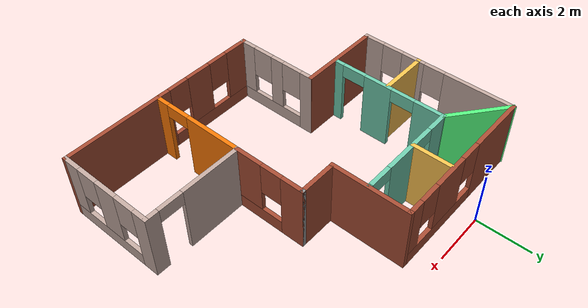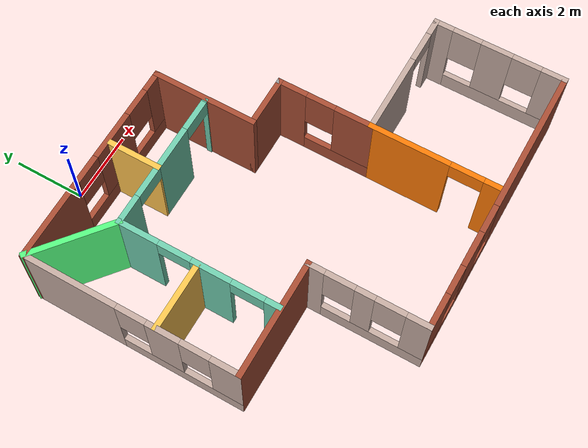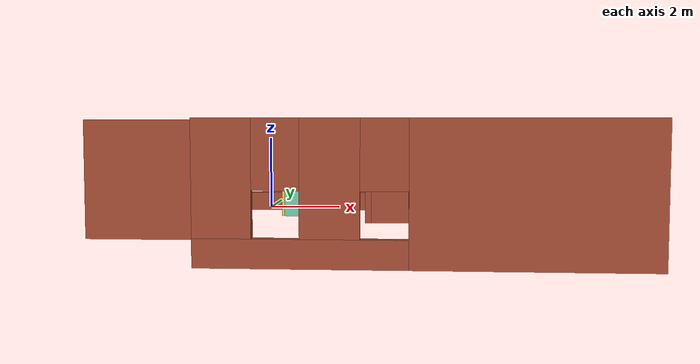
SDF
<?xml version='1.0'?>
<sdf version='1.6'>
  <model name='model'>
    <pose frame=''>2.54479 -5.24479 0 0 -0 0</pose>
    <link name='Wall_0'>
      <pose frame=''>-2.45979 4.48478 0 0 -0 0</pose>
      <visual name='Wall_0_Visual_0'>
        <pose frame=''>-1.81097 0 1.25 0 -0 0</pose>
        <geometry>
          <box>
            <size>2.27807 0.15 2.5</size>
          </box>
        </geometry>
        <material>
          <script>
            <uri>file://media/materials/scripts/gazebo.material</uri>
            <name>Gazebo/Bricks</name>
          </script>
          <ambient>1 1 1 1</ambient>
        </material>
        <meta>
          <layer>0</layer>
        </meta>
      </visual>
      <collision name='Wall_0_Collision_0'>
        <geometry>
          <box>
            <size>2.27807 0.15 2.5</size>
          </box>
        </geometry>
        <pose frame=''>-1.81097 0 1.25 0 -0 0</pose>
      </collision>
      <visual name='Wall_0_Visual_1'>
        <pose frame=''>1.13903 0 0.25 0 -0 0</pose>
        <geometry>
          <box>
            <size>3.62193 0.15 0.5</size>
          </box>
        </geometry>
        <material>
          <script>
            <uri>file://media/materials/scripts/gazebo.material</uri>
            <name>Gazebo/Bricks</name>
          </script>
          <ambient>1 1 1 1</ambient>
        </material>
        <meta>
          <layer>0</layer>
        </meta>
      </visual>
      <collision name='Wall_0_Collision_1'>
        <geometry>
          <box>
            <size>3.62193 0.15 0.5</size>
          </box>
        </geometry>
        <pose frame=''>1.13903 0 0.25 0 -0 0</pose>
      </collision>
      <visual name='Wall_0_Visual_2'>
        <pose frame=''>0.823098 0 1.5 0 -0 0</pose>
        <geometry>
          <box>
            <size>1.39006 0.15 2</size>
          </box>
        </geometry>
        <material>
          <script>
            <uri>file://media/materials/scripts/gazebo.material</uri>
            <name>Gazebo/Bricks</name>
          </script>
          <ambient>1 1 1 1</ambient>
        </material>
        <meta>
          <layer>0</layer>
        </meta>
      </visual>
      <collision name='Wall_0_Collision_2'>
        <geometry>
          <box>
            <size>1.39006 0.15 2</size>
          </box>
        </geometry>
        <pose frame=''>0.823098 0 1.5 0 -0 0</pose>
      </collision>
      <visual name='Wall_0_Visual_3'>
        <pose frame=''>2.63406 0 1.5 0 -0 0</pose>
        <geometry>
          <box>
            <size>0.631872 0.15 2</size>
          </box>
        </geometry>
        <material>
          <script>
            <uri>file://media/materials/scripts/gazebo.material</uri>
            <name>Gazebo/Bricks</name>
          </script>
          <ambient>1 1 1 1</ambient>
        </material>
        <meta>
          <layer>0</layer>
        </meta>
      </visual>
      <collision name='Wall_0_Collision_3'>
        <geometry>
          <box>
            <size>0.631872 0.15 2</size>
          </box>
        </geometry>
        <pose frame=''>2.63406 0 1.5 0 -0 0</pose>
      </collision>
      <visual name='Wall_0_Visual_4'>
        <pose frame=''>-0.271932 0 1.9 0 -0 0</pose>
        <geometry>
          <box>
            <size>0.8 0.15 1.2</size>
          </box>
        </geometry>
        <material>
          <script>
            <uri>file://media/materials/scripts/gazebo.material</uri>
            <name>Gazebo/Bricks</name>
          </script>
          <ambient>1 1 1 1</ambient>
        </material>
        <meta>
          <layer>0</layer>
        </meta>
      </visual>
      <collision name='Wall_0_Collision_4'>
        <geometry>
          <box>
            <size>0.8 0.15 1.2</size>
          </box>
        </geometry>
        <pose frame=''>-0.271932 0 1.9 0 -0 0</pose>
      </collision>
      <visual name='Wall_0_Visual_5'>
        <pose frame=''>1.91813 0 1.9 0 -0 0</pose>
        <geometry>
          <box>
            <size>0.8 0.15 1.2</size>
          </box>
        </geometry>
        <material>
          <script>
            <uri>file://media/materials/scripts/gazebo.material</uri>
            <name>Gazebo/Bricks</name>
          </script>
          <ambient>1 1 1 1</ambient>
        </material>
        <meta>
          <layer>0</layer>
        </meta>
      </visual>
      <collision name='Wall_0_Collision_5'>
        <geometry>
          <box>
            <size>0.8 0.15 1.2</size>
          </box>
        </geometry>
        <pose frame=''>1.91813 0 1.9 0 -0 0</pose>
      </collision>
    </link>
    <link name='Wall_12'>
      <pose frame=''>3.56521 -0.915214 0 0 -0 0</pose>
      <visual name='Wall_12_Visual_0'>
        <pose frame=''>-0.708455 0 1.25 0 -0 0</pose>
        <geometry>
          <box>
            <size>2.33309 0.15 2.5</size>
          </box>
        </geometry>
        <material>
          <script>
            <uri>file://media/materials/scripts/gazebo.material</uri>
            <name>Gazebo/Grey</name>
          </script>
          <ambient>0.760784 0.662745 0.627451 1</ambient>
        </material>
        <meta>
          <layer>0</layer>
        </meta>
      </visual>
      <collision name='Wall_12_Collision_0'>
        <geometry>
          <box>
            <size>2.33309 0.15 2.5</size>
          </box>
        </geometry>
        <pose frame=''>-0.708455 0 1.25 0 -0 0</pose>
      </collision>
      <visual name='Wall_12_Visual_1'>
        <pose frame=''>1.61654 0 1.25 0 -0 0</pose>
        <geometry>
          <box>
            <size>0.516909 0.15 2.5</size>
          </box>
        </geometry>
        <material>
          <script>
            <uri>file://media/materials/scripts/gazebo.material</uri>
            <name>Gazebo/Grey</name>
          </script>
          <ambient>0.760784 0.662745 0.627451 1</ambient>
        </material>
        <meta>
          <layer>0</layer>
        </meta>
      </visual>
      <collision name='Wall_12_Collision_1'>
        <geometry>
          <box>
            <size>0.516909 0.15 2.5</size>
          </box>
        </geometry>
        <pose frame=''>1.61654 0 1.25 0 -0 0</pose>
      </collision>
      <visual name='Wall_12_Visual_2'>
        <pose frame=''>0.908091 0 2.25 0 -0 0</pose>
        <geometry>
          <box>
            <size>0.9 0.15 0.5</size>
          </box>
        </geometry>
        <material>
          <script>
            <uri>file://media/materials/scripts/gazebo.material</uri>
            <name>Gazebo/Grey</name>
          </script>
          <ambient>0.760784 0.662745 0.627451 1</ambient>
        </material>
        <meta>
          <layer>0</layer>
        </meta>
      </visual>
      <collision name='Wall_12_Collision_2'>
        <geometry>
          <box>
            <size>0.9 0.15 0.5</size>
          </box>
        </geometry>
        <pose frame=''>0.908091 0 2.25 0 -0 0</pose>
      </collision>
    </link>
    <link name='Wall_13'>
      <pose frame=''>5.36521 -2.71522 0 0 0 -1.5708</pose>
      <visual name='Wall_13_Visual_0'>
        <pose frame=''>-1.58513 0 1.25 0 -0 0</pose>
        <geometry>
          <box>
            <size>0.579738 0.15 2.5</size>
          </box>
        </geometry>
        <material>
          <script>
            <uri>file://media/materials/scripts/gazebo.material</uri>
            <name>Gazebo/Grey</name>
          </script>
          <ambient>0.760784 0.662745 0.627451 1</ambient>
        </material>
        <meta>
          <layer>0</layer>
        </meta>
      </visual>
      <collision name='Wall_13_Collision_0'>
        <geometry>
          <box>
            <size>0.579738 0.15 2.5</size>
          </box>
        </geometry>
        <pose frame=''>-1.58513 0 1.25 0 -0 0</pose>
      </collision>
      <visual name='Wall_13_Visual_1'>
        <pose frame=''>0.289869 0 0.25 0 -0 0</pose>
        <geometry>
          <box>
            <size>3.17026 0.15 0.5</size>
          </box>
        </geometry>
        <material>
          <script>
            <uri>file://media/materials/scripts/gazebo.material</uri>
            <name>Gazebo/Grey</name>
          </script>
          <ambient>0.760784 0.662745 0.627451 1</ambient>
        </material>
        <meta>
          <layer>0</layer>
        </meta>
      </visual>
      <collision name='Wall_13_Collision_1'>
        <geometry>
          <box>
            <size>3.17026 0.15 0.5</size>
          </box>
        </geometry>
        <pose frame=''>0.289869 0 0.25 0 -0 0</pose>
      </collision>
      <visual name='Wall_13_Visual_2'>
        <pose frame=''>-0.06256 0 1.5 0 -0 0</pose>
        <geometry>
          <box>
            <size>0.865404 0.15 2</size>
          </box>
        </geometry>
        <material>
          <script>
            <uri>file://media/materials/scripts/gazebo.material</uri>
            <name>Gazebo/Grey</name>
          </script>
          <ambient>0.760784 0.662745 0.627451 1</ambient>
        </material>
        <meta>
          <layer>0</layer>
        </meta>
      </visual>
      <collision name='Wall_13_Collision_2'>
        <geometry>
          <box>
            <size>0.865404 0.15 2</size>
          </box>
        </geometry>
        <pose frame=''>-0.06256 0 1.5 0 -0 0</pose>
      </collision>
      <visual name='Wall_13_Visual_3'>
        <pose frame=''>1.52257 0 1.5 0 -0 0</pose>
        <geometry>
          <box>
            <size>0.704858 0.15 2</size>
          </box>
        </geometry>
        <material>
          <script>
            <uri>file://media/materials/scripts/gazebo.material</uri>
            <name>Gazebo/Grey</name>
          </script>
          <ambient>0.760784 0.662745 0.627451 1</ambient>
        </material>
        <meta>
          <layer>0</layer>
        </meta>
      </visual>
      <collision name='Wall_13_Collision_3'>
        <geometry>
          <box>
            <size>0.704858 0.15 2</size>
          </box>
        </geometry>
        <pose frame=''>1.52257 0 1.5 0 -0 0</pose>
      </collision>
      <visual name='Wall_13_Visual_4'>
        <pose frame=''>-0.895262 0 1.9 0 -0 0</pose>
        <geometry>
          <box>
            <size>0.8 0.15 1.2</size>
          </box>
        </geometry>
        <material>
          <script>
            <uri>file://media/materials/scripts/gazebo.material</uri>
            <name>Gazebo/Grey</name>
          </script>
          <ambient>0.760784 0.662745 0.627451 1</ambient>
        </material>
        <meta>
          <layer>0</layer>
        </meta>
      </visual>
      <collision name='Wall_13_Collision_4'>
        <geometry>
          <box>
            <size>0.8 0.15 1.2</size>
          </box>
        </geometry>
        <pose frame=''>-0.895262 0 1.9 0 -0 0</pose>
      </collision>
      <visual name='Wall_13_Visual_5'>
        <pose frame=''>0.770142 0 1.9 0 -0 0</pose>
        <geometry>
          <box>
            <size>0.8 0.15 1.2</size>
          </box>
        </geometry>
        <material>
          <script>
            <uri>file://media/materials/scripts/gazebo.material</uri>
            <name>Gazebo/Grey</name>
          </script>
          <ambient>0.760784 0.662745 0.627451 1</ambient>
        </material>
        <meta>
          <layer>0</layer>
        </meta>
      </visual>
      <collision name='Wall_13_Collision_5'>
        <geometry>
          <box>
            <size>0.8 0.15 1.2</size>
          </box>
        </geometry>
        <pose frame=''>0.770142 0 1.9 0 -0 0</pose>
      </collision>
    </link>
    <link name='Wall_14'>
      <pose frame=''>1.56522 -4.51522 0 0 -0 3.14159</pose>
      <visual name='Wall_14_Visual_0'>
        <pose frame=''>-1.80374 0 1.25 0 -0 0</pose>
        <geometry>
          <box>
            <size>4.14252 0.15 2.5</size>
          </box>
        </geometry>
        <material>
          <script>
            <uri>file://media/materials/scripts/gazebo.material</uri>
            <name>Gazebo/Bricks</name>
          </script>
          <ambient>0.760784 0.662745 0.627451 1</ambient>
        </material>
        <meta>
          <layer>0</layer>
        </meta>
      </visual>
      <collision name='Wall_14_Collision_0'>
        <geometry>
          <box>
            <size>4.14252 0.15 2.5</size>
          </box>
        </geometry>
        <pose frame=''>-1.80374 0 1.25 0 -0 0</pose>
      </collision>
      <visual name='Wall_14_Visual_1'>
        <pose frame=''>2.07126 0 0.25 0 -0 0</pose>
        <geometry>
          <box>
            <size>3.60748 0.15 0.5</size>
          </box>
        </geometry>
        <material>
          <script>
            <uri>file://media/materials/scripts/gazebo.material</uri>
            <name>Gazebo/Bricks</name>
          </script>
          <ambient>0.760784 0.662745 0.627451 1</ambient>
        </material>
        <meta>
          <layer>0</layer>
        </meta>
      </visual>
      <collision name='Wall_14_Collision_1'>
        <geometry>
          <box>
            <size>3.60748 0.15 0.5</size>
          </box>
        </geometry>
        <pose frame=''>2.07126 0 0.25 0 -0 0</pose>
      </collision>
      <visual name='Wall_14_Visual_2'>
        <pose frame=''>1.56961 0 1.5 0 -0 0</pose>
        <geometry>
          <box>
            <size>1.00419 0.15 2</size>
          </box>
        </geometry>
        <material>
          <script>
            <uri>file://media/materials/scripts/gazebo.material</uri>
            <name>Gazebo/Bricks</name>
          </script>
          <ambient>0.760784 0.662745 0.627451 1</ambient>
        </material>
        <meta>
          <layer>0</layer>
        </meta>
      </visual>
      <collision name='Wall_14_Collision_2'>
        <geometry>
          <box>
            <size>1.00419 0.15 2</size>
          </box>
        </geometry>
        <pose frame=''>1.56961 0 1.5 0 -0 0</pose>
      </collision>
      <visual name='Wall_14_Visual_3'>
        <pose frame=''>3.37335 0 1.5 0 -0 0</pose>
        <geometry>
          <box>
            <size>1.00329 0.15 2</size>
          </box>
        </geometry>
        <material>
          <script>
            <uri>file://media/materials/scripts/gazebo.material</uri>
            <name>Gazebo/Bricks</name>
          </script>
          <ambient>0.760784 0.662745 0.627451 1</ambient>
        </material>
        <meta>
          <layer>0</layer>
        </meta>
      </visual>
      <collision name='Wall_14_Collision_3'>
        <geometry>
          <box>
            <size>1.00329 0.15 2</size>
          </box>
        </geometry>
        <pose frame=''>3.37335 0 1.5 0 -0 0</pose>
      </collision>
      <visual name='Wall_14_Visual_4'>
        <pose frame=''>0.667521 0 1.9 0 -0 0</pose>
        <geometry>
          <box>
            <size>0.8 0.15 1.2</size>
          </box>
        </geometry>
        <material>
          <script>
            <uri>file://media/materials/scripts/gazebo.material</uri>
            <name>Gazebo/Bricks</name>
          </script>
          <ambient>0.760784 0.662745 0.627451 1</ambient>
        </material>
        <meta>
          <layer>0</layer>
        </meta>
      </visual>
      <collision name='Wall_14_Collision_4'>
        <geometry>
          <box>
            <size>0.8 0.15 1.2</size>
          </box>
        </geometry>
        <pose frame=''>0.667521 0 1.9 0 -0 0</pose>
      </collision>
      <visual name='Wall_14_Visual_5'>
        <pose frame=''>2.47171 0 1.9 0 -0 0</pose>
        <geometry>
          <box>
            <size>0.8 0.15 1.2</size>
          </box>
        </geometry>
        <material>
          <script>
            <uri>file://media/materials/scripts/gazebo.material</uri>
            <name>Gazebo/Bricks</name>
          </script>
          <ambient>0.760784 0.662745 0.627451 1</ambient>
        </material>
        <meta>
          <layer>0</layer>
        </meta>
      </visual>
      <collision name='Wall_14_Collision_5'>
        <geometry>
          <box>
            <size>0.8 0.15 1.2</size>
          </box>
        </geometry>
        <pose frame=''>2.47171 0 1.9 0 -0 0</pose>
      </collision>
    </link>
    <link name='Wall_18'>
      <pose frame=''>-5.33479 1.55979 0 0 0 -1.5708</pose>
      <visual name='Wall_18_Visual_0'>
        <pose frame=''>-1.67553 0 1.25 0 -0 0</pose>
        <geometry>
          <box>
            <size>2.64893 0.15 2.5</size>
          </box>
        </geometry>
        <material>
          <script>
            <uri>file://media/materials/scripts/gazebo.material</uri>
            <name>Gazebo/Grey</name>
          </script>
          <ambient>0.760784 0.662745 0.627451 1</ambient>
        </material>
        <meta>
          <layer>0</layer>
        </meta>
      </visual>
      <collision name='Wall_18_Collision_0'>
        <geometry>
          <box>
            <size>2.64893 0.15 2.5</size>
          </box>
        </geometry>
        <pose frame=''>-1.67553 0 1.25 0 -0 0</pose>
      </collision>
      <visual name='Wall_18_Visual_1'>
        <pose frame=''>1.32447 0 0.25 0 -0 0</pose>
        <geometry>
          <box>
            <size>3.35107 0.15 0.5</size>
          </box>
        </geometry>
        <material>
          <script>
            <uri>file://media/materials/scripts/gazebo.material</uri>
            <name>Gazebo/Grey</name>
          </script>
          <ambient>0.760784 0.662745 0.627451 1</ambient>
        </material>
        <meta>
          <layer>0</layer>
        </meta>
      </visual>
      <collision name='Wall_18_Collision_1'>
        <geometry>
          <box>
            <size>3.35107 0.15 0.5</size>
          </box>
        </geometry>
        <pose frame=''>1.32447 0 0.25 0 -0 0</pose>
      </collision>
      <visual name='Wall_18_Visual_2'>
        <pose frame=''>0.904763 0 1.5 0 -0 0</pose>
        <geometry>
          <box>
            <size>0.911665 0.15 2</size>
          </box>
        </geometry>
        <material>
          <script>
            <uri>file://media/materials/scripts/gazebo.material</uri>
            <name>Gazebo/Grey</name>
          </script>
          <ambient>0.760784 0.662745 0.627451 1</ambient>
        </material>
        <meta>
          <layer>0</layer>
        </meta>
      </visual>
      <collision name='Wall_18_Collision_2'>
        <geometry>
          <box>
            <size>0.911665 0.15 2</size>
          </box>
        </geometry>
        <pose frame=''>0.904763 0 1.5 0 -0 0</pose>
      </collision>
      <visual name='Wall_18_Visual_3'>
        <pose frame=''>2.5803 0 1.5 0 -0 0</pose>
        <geometry>
          <box>
            <size>0.839405 0.15 2</size>
          </box>
        </geometry>
        <material>
          <script>
            <uri>file://media/materials/scripts/gazebo.material</uri>
            <name>Gazebo/Grey</name>
          </script>
          <ambient>0.760784 0.662745 0.627451 1</ambient>
        </material>
        <meta>
          <layer>0</layer>
        </meta>
      </visual>
      <collision name='Wall_18_Collision_3'>
        <geometry>
          <box>
            <size>0.839405 0.15 2</size>
          </box>
        </geometry>
        <pose frame=''>2.5803 0 1.5 0 -0 0</pose>
      </collision>
      <visual name='Wall_18_Visual_4'>
        <pose frame=''>0.04893 0 1.9 0 -0 0</pose>
        <geometry>
          <box>
            <size>0.8 0.15 1.2</size>
          </box>
        </geometry>
        <material>
          <script>
            <uri>file://media/materials/scripts/gazebo.material</uri>
            <name>Gazebo/Grey</name>
          </script>
          <ambient>0.760784 0.662745 0.627451 1</ambient>
        </material>
        <meta>
          <layer>0</layer>
        </meta>
      </visual>
      <collision name='Wall_18_Collision_4'>
        <geometry>
          <box>
            <size>0.8 0.15 1.2</size>
          </box>
        </geometry>
        <pose frame=''>0.04893 0 1.9 0 -0 0</pose>
      </collision>
      <visual name='Wall_18_Visual_5'>
        <pose frame=''>1.76059 0 1.9 0 -0 0</pose>
        <geometry>
          <box>
            <size>0.8 0.15 1.2</size>
          </box>
        </geometry>
        <material>
          <script>
            <uri>file://media/materials/scripts/gazebo.material</uri>
            <name>Gazebo/Grey</name>
          </script>
          <ambient>0.760784 0.662745 0.627451 1</ambient>
        </material>
        <meta>
          <layer>0</layer>
        </meta>
      </visual>
      <collision name='Wall_18_Collision_5'>
        <geometry>
          <box>
            <size>0.8 0.15 1.2</size>
          </box>
        </geometry>
        <pose frame=''>1.76059 0 1.9 0 -0 0</pose>
      </collision>
    </link>
    <link name='Wall_21'>
      <collision name='Wall_21_Collision'>
        <geometry>
          <box>
            <size>3.25 0.15 2.5</size>
          </box>
        </geometry>
        <pose frame=''>0 0 1.25 0 -0 0</pose>
      </collision>
      <visual name='Wall_21_Visual'>
        <pose frame=''>0 0 1.25 0 -0 0</pose>
        <geometry>
          <box>
            <size>3.25 0.15 2.5</size>
          </box>
        </geometry>
        <material>
          <script>
            <uri>file://media/materials/scripts/gazebo.material</uri>
            <name>Gazebo/Bricks</name>
          </script>
          <ambient>1 1 1 1</ambient>
        </material>
        <meta>
          <layer>0</layer>
        </meta>
      </visual>
      <pose frame=''>-3.78479 -1.36522 0 0 -0 0</pose>
    </link>
    <link name='Wall_22'>
      <pose frame=''>-2.23479 -2.94521 0 0 0 -1.5708</pose>
      <visual name='Wall_22_Visual_0'>
        <pose frame=''>-1.38852 0 1.25 0 -0 0</pose>
        <geometry>
          <box>
            <size>0.512958 0.15 2.5</size>
          </box>
        </geometry>
        <material>
          <script>
            <uri>file://media/materials/scripts/gazebo.material</uri>
            <name>Gazebo/Grey</name>
          </script>
          <ambient>0.760784 0.662745 0.627451 1</ambient>
        </material>
        <meta>
          <layer>0</layer>
        </meta>
      </visual>
      <collision name='Wall_22_Collision_0'>
        <geometry>
          <box>
            <size>0.512958 0.15 2.5</size>
          </box>
        </geometry>
        <pose frame=''>-1.38852 0 1.25 0 -0 0</pose>
      </collision>
      <visual name='Wall_22_Visual_1'>
        <pose frame=''>0.256479 0 0.25 0 -0 0</pose>
        <geometry>
          <box>
            <size>2.77704 0.15 0.5</size>
          </box>
        </geometry>
        <material>
          <script>
            <uri>file://media/materials/scripts/gazebo.material</uri>
            <name>Gazebo/Grey</name>
          </script>
          <ambient>0.760784 0.662745 0.627451 1</ambient>
        </material>
        <meta>
          <layer>0</layer>
        </meta>
      </visual>
      <collision name='Wall_22_Collision_1'>
        <geometry>
          <box>
            <size>2.77704 0.15 0.5</size>
          </box>
        </geometry>
        <pose frame=''>0.256479 0 0.25 0 -0 0</pose>
      </collision>
      <visual name='Wall_22_Visual_2'>
        <pose frame=''>-0.072819 0 1.5 0 -0 0</pose>
        <geometry>
          <box>
            <size>0.518445 0.15 2</size>
          </box>
        </geometry>
        <material>
          <script>
            <uri>file://media/materials/scripts/gazebo.material</uri>
            <name>Gazebo/Grey</name>
          </script>
          <ambient>0.760784 0.662745 0.627451 1</ambient>
        </material>
        <meta>
          <layer>0</layer>
        </meta>
      </visual>
      <collision name='Wall_22_Collision_2'>
        <geometry>
          <box>
            <size>0.518445 0.15 2</size>
          </box>
        </geometry>
        <pose frame=''>-0.072819 0 1.5 0 -0 0</pose>
      </collision>
      <visual name='Wall_22_Visual_3'>
        <pose frame=''>1.3157 0 1.5 0 -0 0</pose>
        <geometry>
          <box>
            <size>0.658597 0.15 2</size>
          </box>
        </geometry>
        <material>
          <script>
            <uri>file://media/materials/scripts/gazebo.material</uri>
            <name>Gazebo/Grey</name>
          </script>
          <ambient>0.760784 0.662745 0.627451 1</ambient>
        </material>
        <meta>
          <layer>0</layer>
        </meta>
      </visual>
      <collision name='Wall_22_Collision_3'>
        <geometry>
          <box>
            <size>0.658597 0.15 2</size>
          </box>
        </geometry>
        <pose frame=''>1.3157 0 1.5 0 -0 0</pose>
      </collision>
      <visual name='Wall_22_Visual_4'>
        <pose frame=''>-0.732042 0 1.9 0 -0 0</pose>
        <geometry>
          <box>
            <size>0.8 0.15 1.2</size>
          </box>
        </geometry>
        <material>
          <script>
            <uri>file://media/materials/scripts/gazebo.material</uri>
            <name>Gazebo/Grey</name>
          </script>
          <ambient>0.760784 0.662745 0.627451 1</ambient>
        </material>
        <meta>
          <layer>0</layer>
        </meta>
      </visual>
      <collision name='Wall_22_Collision_4'>
        <geometry>
          <box>
            <size>0.8 0.15 1.2</size>
          </box>
        </geometry>
        <pose frame=''>-0.732042 0 1.9 0 -0 0</pose>
      </collision>
      <visual name='Wall_22_Visual_5'>
        <pose frame=''>0.586403 0 1.9 0 -0 0</pose>
        <geometry>
          <box>
            <size>0.8 0.15 1.2</size>
          </box>
        </geometry>
        <material>
          <script>
            <uri>file://media/materials/scripts/gazebo.material</uri>
            <name>Gazebo/Grey</name>
          </script>
          <ambient>0.760784 0.662745 0.627451 1</ambient>
        </material>
        <meta>
          <layer>0</layer>
        </meta>
      </visual>
      <collision name='Wall_22_Collision_5'>
        <geometry>
          <box>
            <size>0.8 0.15 1.2</size>
          </box>
        </geometry>
        <pose frame=''>0.586403 0 1.9 0 -0 0</pose>
      </collision>
    </link>
    <link name='Wall_25'>
      <pose frame=''>1.76521 -2.71522 0 0 0 -1.5708</pose>
      <visual name='Wall_25_Visual_0'>
        <pose frame=''>-0.754299 0 1.25 0 -0 0</pose>
        <geometry>
          <box>
            <size>2.2414 0.15 2.5</size>
          </box>
        </geometry>
        <material>
          <script>
            <uri>file://media/materials/scripts/gazebo.material</uri>
            <name>Gazebo/Grey</name>
          </script>
          <ambient>0.996078 0.47451 0.0196078 1</ambient>
        </material>
        <meta>
          <layer>0</layer>
        </meta>
      </visual>
      <collision name='Wall_25_Collision_0'>
        <geometry>
          <box>
            <size>2.2414 0.15 2.5</size>
          </box>
        </geometry>
        <pose frame=''>-0.754299 0 1.25 0 -0 0</pose>
      </collision>
      <visual name='Wall_25_Visual_1'>
        <pose frame=''>1.5707 0 1.25 0 -0 0</pose>
        <geometry>
          <box>
            <size>0.608598 0.15 2.5</size>
          </box>
        </geometry>
        <material>
          <script>
            <uri>file://media/materials/scripts/gazebo.material</uri>
            <name>Gazebo/Grey</name>
          </script>
          <ambient>0.996078 0.47451 0.0196078 1</ambient>
        </material>
        <meta>
          <layer>0</layer>
        </meta>
      </visual>
      <collision name='Wall_25_Collision_1'>
        <geometry>
          <box>
            <size>0.608598 0.15 2.5</size>
          </box>
        </geometry>
        <pose frame=''>1.5707 0 1.25 0 -0 0</pose>
      </collision>
      <visual name='Wall_25_Visual_2'>
        <pose frame=''>0.816402 0 2.25 0 -0 0</pose>
        <geometry>
          <box>
            <size>0.9 0.15 0.5</size>
          </box>
        </geometry>
        <material>
          <script>
            <uri>file://media/materials/scripts/gazebo.material</uri>
            <name>Gazebo/Grey</name>
          </script>
          <ambient>0.996078 0.47451 0.0196078 1</ambient>
        </material>
        <meta>
          <layer>0</layer>
        </meta>
      </visual>
      <collision name='Wall_25_Collision_2'>
        <geometry>
          <box>
            <size>0.9 0.15 0.5</size>
          </box>
        </geometry>
        <pose frame=''>0.816402 0 2.25 0 -0 0</pose>
      </collision>
    </link>
    <link name='Wall_27'>
      <pose frame=''>-3.51082 0.847587 0 0 -0 1.5708</pose>
      <visual name='Wall_27_Visual_0'>
        <pose frame=''>-2.02694 0 1.25 0 -0 0</pose>
        <geometry>
          <box>
            <size>0.446122 0.15 2.5</size>
          </box>
        </geometry>
        <material>
          <script>
            <uri>file://media/materials/scripts/gazebo.material</uri>
            <name>Gazebo/Grey</name>
          </script>
          <ambient>0.435294 0.796078 0.67451 1</ambient>
        </material>
        <meta>
          <layer>0</layer>
        </meta>
      </visual>
      <collision name='Wall_27_Collision_0'>
        <geometry>
          <box>
            <size>0.446122 0.15 2.5</size>
          </box>
        </geometry>
        <pose frame=''>-2.02694 0 1.25 0 -0 0</pose>
      </collision>
      <visual name='Wall_27_Visual_1'>
        <pose frame=''>-0.359262 0 1.25 0 -0 0</pose>
        <geometry>
          <box>
            <size>1.08923 0.15 2.5</size>
          </box>
        </geometry>
        <material>
          <script>
            <uri>file://media/materials/scripts/gazebo.material</uri>
            <name>Gazebo/Grey</name>
          </script>
          <ambient>0.435294 0.796078 0.67451 1</ambient>
        </material>
        <meta>
          <layer>0</layer>
        </meta>
      </visual>
      <collision name='Wall_27_Collision_1'>
        <geometry>
          <box>
            <size>1.08923 0.15 2.5</size>
          </box>
        </geometry>
        <pose frame=''>-0.359262 0 1.25 0 -0 0</pose>
      </collision>
      <visual name='Wall_27_Visual_2'>
        <pose frame=''>1.66768 0 1.25 0 -0 0</pose>
        <geometry>
          <box>
            <size>1.16465 0.15 2.5</size>
          </box>
        </geometry>
        <material>
          <script>
            <uri>file://media/materials/scripts/gazebo.material</uri>
            <name>Gazebo/Grey</name>
          </script>
          <ambient>0.435294 0.796078 0.67451 1</ambient>
        </material>
        <meta>
          <layer>0</layer>
        </meta>
      </visual>
      <collision name='Wall_27_Collision_2'>
        <geometry>
          <box>
            <size>1.16465 0.15 2.5</size>
          </box>
        </geometry>
        <pose frame=''>1.66768 0 1.25 0 -0 0</pose>
      </collision>
      <visual name='Wall_27_Visual_3'>
        <pose frame=''>-1.35388 0 2.25 0 -0 0</pose>
        <geometry>
          <box>
            <size>0.9 0.15 0.5</size>
          </box>
        </geometry>
        <material>
          <script>
            <uri>file://media/materials/scripts/gazebo.material</uri>
            <name>Gazebo/Grey</name>
          </script>
          <ambient>0.435294 0.796078 0.67451 1</ambient>
        </material>
        <meta>
          <layer>0</layer>
        </meta>
      </visual>
      <collision name='Wall_27_Collision_3'>
        <geometry>
          <box>
            <size>0.9 0.15 0.5</size>
          </box>
        </geometry>
        <pose frame=''>-1.35388 0 2.25 0 -0 0</pose>
      </collision>
      <visual name='Wall_27_Visual_4'>
        <pose frame=''>0.635354 0 2.25 0 -0 0</pose>
        <geometry>
          <box>
            <size>0.9 0.15 0.5</size>
          </box>
        </geometry>
        <material>
          <script>
            <uri>file://media/materials/scripts/gazebo.material</uri>
            <name>Gazebo/Grey</name>
          </script>
          <ambient>0.435294 0.796078 0.67451 1</ambient>
        </material>
        <meta>
          <layer>0</layer>
        </meta>
      </visual>
      <collision name='Wall_27_Collision_4'>
        <geometry>
          <box>
            <size>0.9 0.15 0.5</size>
          </box>
        </geometry>
        <pose frame=''>0.635354 0 2.25 0 -0 0</pose>
      </collision>
    </link>
    <link name='Wall_28'>
      <pose frame=''>-1.58582 3.02259 0 0 -0 0</pose>
      <visual name='Wall_28_Visual_0'>
        <pose frame=''>-1.57233 0 1.25 0 -0 0</pose>
        <geometry>
          <box>
            <size>0.855348 0.15 2.5</size>
          </box>
        </geometry>
        <material>
          <script>
            <uri>file://media/materials/scripts/gazebo.material</uri>
            <name>Gazebo/Grey</name>
          </script>
          <ambient>0.435294 0.796078 0.67451 1</ambient>
        </material>
        <meta>
          <layer>0</layer>
        </meta>
      </visual>
      <collision name='Wall_28_Collision_0'>
        <geometry>
          <box>
            <size>0.855348 0.15 2.5</size>
          </box>
        </geometry>
        <pose frame=''>-1.57233 0 1.25 0 -0 0</pose>
      </collision>
      <visual name='Wall_28_Visual_1'>
        <pose frame=''>0.375378 0 1.25 0 -0 0</pose>
        <geometry>
          <box>
            <size>1.24006 0.15 2.5</size>
          </box>
        </geometry>
        <material>
          <script>
            <uri>file://media/materials/scripts/gazebo.material</uri>
            <name>Gazebo/Grey</name>
          </script>
          <ambient>0.435294 0.796078 0.67451 1</ambient>
        </material>
        <meta>
          <layer>0</layer>
        </meta>
      </visual>
      <collision name='Wall_28_Collision_1'>
        <geometry>
          <box>
            <size>1.24006 0.15 2.5</size>
          </box>
        </geometry>
        <pose frame=''>0.375378 0 1.25 0 -0 0</pose>
      </collision>
      <visual name='Wall_28_Visual_2'>
        <pose frame=''>1.9477 0 1.25 0 -0 0</pose>
        <geometry>
          <box>
            <size>0.104591 0.15 2.5</size>
          </box>
        </geometry>
        <material>
          <script>
            <uri>file://media/materials/scripts/gazebo.material</uri>
            <name>Gazebo/Grey</name>
          </script>
          <ambient>0.435294 0.796078 0.67451 1</ambient>
        </material>
        <meta>
          <layer>0</layer>
        </meta>
      </visual>
      <collision name='Wall_28_Collision_2'>
        <geometry>
          <box>
            <size>0.104591 0.15 2.5</size>
          </box>
        </geometry>
        <pose frame=''>1.9477 0 1.25 0 -0 0</pose>
      </collision>
      <visual name='Wall_28_Visual_3'>
        <pose frame=''>-0.694652 0 2.25 0 -0 0</pose>
        <geometry>
          <box>
            <size>0.9 0.15 0.5</size>
          </box>
        </geometry>
        <material>
          <script>
            <uri>file://media/materials/scripts/gazebo.material</uri>
            <name>Gazebo/Grey</name>
          </script>
          <ambient>0.435294 0.796078 0.67451 1</ambient>
        </material>
        <meta>
          <layer>0</layer>
        </meta>
      </visual>
      <collision name='Wall_28_Collision_3'>
        <geometry>
          <box>
            <size>0.9 0.15 0.5</size>
          </box>
        </geometry>
        <pose frame=''>-0.694652 0 2.25 0 -0 0</pose>
      </collision>
      <visual name='Wall_28_Visual_4'>
        <pose frame=''>1.44541 0 2.25 0 -0 0</pose>
        <geometry>
          <box>
            <size>0.9 0.15 0.5</size>
          </box>
        </geometry>
        <material>
          <script>
            <uri>file://media/materials/scripts/gazebo.material</uri>
            <name>Gazebo/Grey</name>
          </script>
          <ambient>0.435294 0.796078 0.67451 1</ambient>
        </material>
        <meta>
          <layer>0</layer>
        </meta>
      </visual>
      <collision name='Wall_28_Collision_4'>
        <geometry>
          <box>
            <size>0.9 0.15 0.5</size>
          </box>
        </geometry>
        <pose frame=''>1.44541 0 2.25 0 -0 0</pose>
      </collision>
    </link>
    <link name='Wall_30'>
      <collision name='Wall_30_Collision'>
        <geometry>
          <box>
            <size>2.48771 0.15 2.5</size>
          </box>
        </geometry>
        <pose frame=''>0 0 1.25 0 -0 0</pose>
      </collision>
      <visual name='Wall_30_Visual'>
        <pose frame=''>0 0 1.25 0 -0 0</pose>
        <geometry>
          <box>
            <size>2.48771 0.15 2.5</size>
          </box>
        </geometry>
        <material>
          <script>
            <uri>file://media/materials/scripts/gazebo.material</uri>
            <name>Gazebo/Grey</name>
          </script>
          <ambient>0.333333 1 0.498039 1</ambient>
        </material>
        <meta>
          <layer>0</layer>
        </meta>
      </visual>
      <pose frame=''>-4.4228 3.75369 0 0 0 -0.675752</pose>
    </link>
    <link name='Wall_32'>
      <collision name='Wall_32_Collision'>
        <geometry>
          <box>
            <size>1.5 0.15 2.5</size>
          </box>
        </geometry>
        <pose frame=''>0 0 1.25 0 -0 0</pose>
      </collision>
      <visual name='Wall_32_Visual'>
        <pose frame=''>0 0 1.25 0 -0 0</pose>
        <geometry>
          <box>
            <size>1.5 0.15 2.5</size>
          </box>
        </geometry>
        <material>
          <script>
            <uri>file://media/materials/scripts/gazebo.material</uri>
            <name>Gazebo/Grey</name>
          </script>
          <ambient>1 0.764706 0.305882 1</ambient>
        </material>
        <meta>
          <layer>0</layer>
        </meta>
      </visual>
      <pose frame=''>-1.82099 3.70082 0 0 -0 1.5708</pose>
    </link>
    <link name='Wall_36'>
      <collision name='Wall_36_Collision'>
        <geometry>
          <box>
            <size>1.9 0.15 2.5</size>
          </box>
        </geometry>
        <pose frame=''>0 0 1.25 0 -0 0</pose>
      </collision>
      <visual name='Wall_36_Visual'>
        <pose frame=''>0 0 1.25 0 -0 0</pose>
        <geometry>
          <box>
            <size>1.9 0.15 2.5</size>
          </box>
        </geometry>
        <material>
          <script>
            <uri>file://media/materials/scripts/gazebo.material</uri>
            <name>Gazebo/Grey</name>
          </script>
          <ambient>1 0.764706 0.305882 1</ambient>
        </material>
        <meta>
          <layer>0</layer>
        </meta>
      </visual>
      <pose frame=''>-4.45773 0.841667 0 0 -0 0</pose>
    </link>
    <link name='Wall_5'>
      <collision name='Wall_5_Collision'>
        <geometry>
          <box>
            <size>2.95011 0.15 2.5</size>
          </box>
        </geometry>
        <pose frame=''>0 0 1.25 0 -0 0</pose>
      </collision>
      <visual name='Wall_5_Visual'>
        <pose frame=''>0 0 1.25 0 -0 0</pose>
        <geometry>
          <box>
            <size>2.95011 0.15 2.5</size>
          </box>
        </geometry>
        <material>
          <script>
            <uri>file://media/materials/scripts/gazebo.material</uri>
            <name>Gazebo/Bricks</name>
          </script>
          <ambient>1 1 1 1</ambient>
        </material>
        <meta>
          <layer>0</layer>
        </meta>
      </visual>
      <pose frame=''>0.415215 3.08479 0 0 0 -1.5708</pose>
    </link>
    <link name='Wall_6'>
      <collision name='Wall_6_Collision'>
        <geometry>
          <box>
            <size>1.5 0.15 2.5</size>
          </box>
        </geometry>
        <pose frame=''>0 0 1.25 0 -0 0</pose>
      </collision>
      <visual name='Wall_6_Visual'>
        <pose frame=''>0 0 1.25 0 -0 0</pose>
        <geometry>
          <box>
            <size>1.5 0.15 2.5</size>
          </box>
        </geometry>
        <material>
          <script>
            <uri>file://media/materials/scripts/gazebo.material</uri>
            <name>Gazebo/Bricks</name>
          </script>
          <ambient>1 1 1 1</ambient>
        </material>
        <meta>
          <layer>0</layer>
        </meta>
      </visual>
      <pose frame=''>1.09021 1.68479 0 0 -0 0</pose>
    </link>
    <link name='Wall_7'>
      <collision name='Wall_7_Collision'>
        <geometry>
          <box>
            <size>0.15 0.15 2.5</size>
          </box>
        </geometry>
        <pose frame=''>0 0 1.25 0 -0 0</pose>
      </collision>
      <visual name='Wall_7_Visual'>
        <pose frame=''>0 0 1.25 0 -0 0</pose>
        <geometry>
          <box>
            <size>0.15 0.15 2.5</size>
          </box>
        </geometry>
        <material>
          <script>
            <uri>file://media/materials/scripts/gazebo.material</uri>
            <name>Gazebo/Grey</name>
          </script>
          <ambient>1 1 1 1</ambient>
        </material>
        <meta>
          <layer>0</layer>
        </meta>
      </visual>
      <pose frame=''>1.76521 1.68479 0 0 -0 0</pose>
    </link>
    <link name='Wall_9'>
      <pose frame=''>1.76521 0.384785 0 0 0 -1.5708</pose>
      <visual name='Wall_9_Visual_0'>
        <pose frame=''>-0.941662 0 1.25 0 -0 0</pose>
        <geometry>
          <box>
            <size>0.866677 0.15 2.5</size>
          </box>
        </geometry>
        <material>
          <script>
            <uri>file://media/materials/scripts/gazebo.material</uri>
            <name>Gazebo/Bricks</name>
          </script>
          <ambient>1 1 1 1</ambient>
        </material>
        <meta>
          <layer>0</layer>
        </meta>
      </visual>
      <collision name='Wall_9_Collision_0'>
        <geometry>
          <box>
            <size>0.866677 0.15 2.5</size>
          </box>
        </geometry>
        <pose frame=''>-0.941662 0 1.25 0 -0 0</pose>
      </collision>
      <visual name='Wall_9_Visual_1'>
        <pose frame=''>0.433338 0 0.25 0 -0 0</pose>
        <geometry>
          <box>
            <size>1.88332 0.15 0.5</size>
          </box>
        </geometry>
        <material>
          <script>
            <uri>file://media/materials/scripts/gazebo.material</uri>
            <name>Gazebo/Bricks</name>
          </script>
          <ambient>1 1 1 1</ambient>
        </material>
        <meta>
          <layer>0</layer>
        </meta>
      </visual>
      <collision name='Wall_9_Collision_1'>
        <geometry>
          <box>
            <size>1.88332 0.15 0.5</size>
          </box>
        </geometry>
        <pose frame=''>0.433338 0 0.25 0 -0 0</pose>
      </collision>
      <visual name='Wall_9_Visual_2'>
        <pose frame=''>0.833338 0 1.5 0 -0 0</pose>
        <geometry>
          <box>
            <size>1.08332 0.15 2</size>
          </box>
        </geometry>
        <material>
          <script>
            <uri>file://media/materials/scripts/gazebo.material</uri>
            <name>Gazebo/Bricks</name>
          </script>
          <ambient>1 1 1 1</ambient>
        </material>
        <meta>
          <layer>0</layer>
        </meta>
      </visual>
      <collision name='Wall_9_Collision_2'>
        <geometry>
          <box>
            <size>1.08332 0.15 2</size>
          </box>
        </geometry>
        <pose frame=''>0.833338 0 1.5 0 -0 0</pose>
      </collision>
      <visual name='Wall_9_Visual_3'>
        <pose frame=''>-0.108323 0 1.9 0 -0 0</pose>
        <geometry>
          <box>
            <size>0.8 0.15 1.2</size>
          </box>
        </geometry>
        <material>
          <script>
            <uri>file://media/materials/scripts/gazebo.material</uri>
            <name>Gazebo/Bricks</name>
          </script>
          <ambient>1 1 1 1</ambient>
        </material>
        <meta>
          <layer>0</layer>
        </meta>
      </visual>
      <collision name='Wall_9_Collision_3'>
        <geometry>
          <box>
            <size>0.8 0.15 1.2</size>
          </box>
        </geometry>
        <pose frame=''>-0.108323 0 1.9 0 -0 0</pose>
      </collision>
    </link>
    <static>1</static>
  </model>
</sdf>
